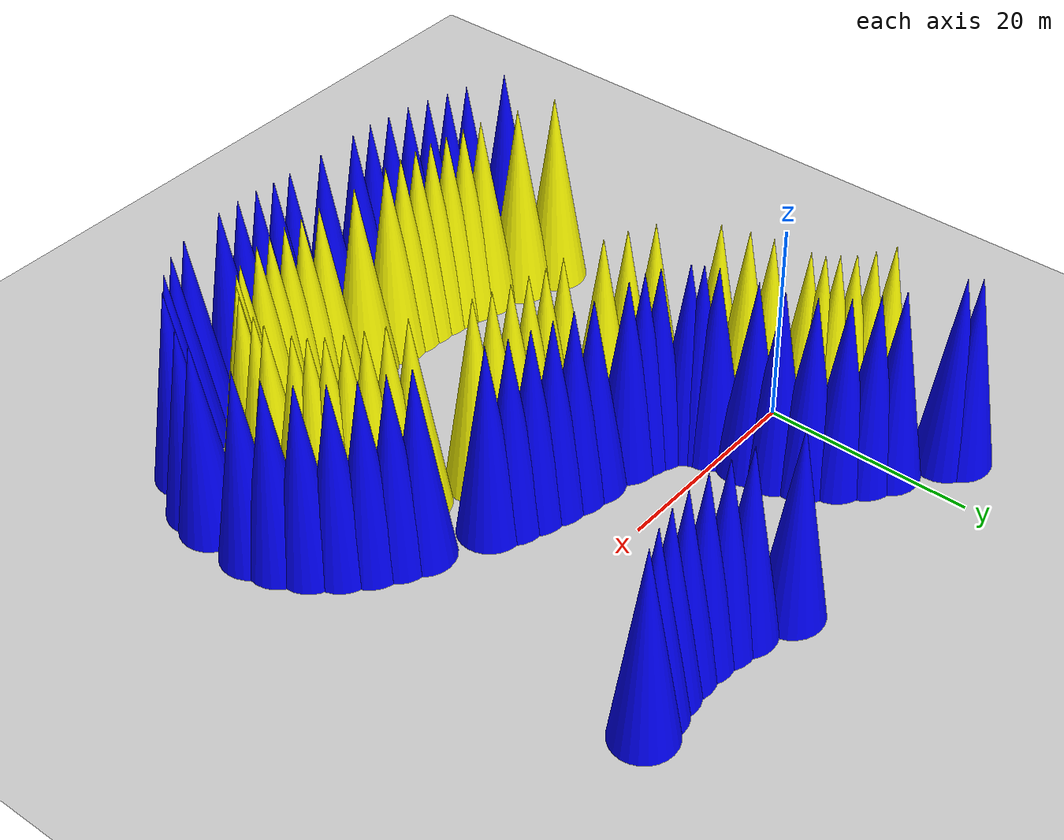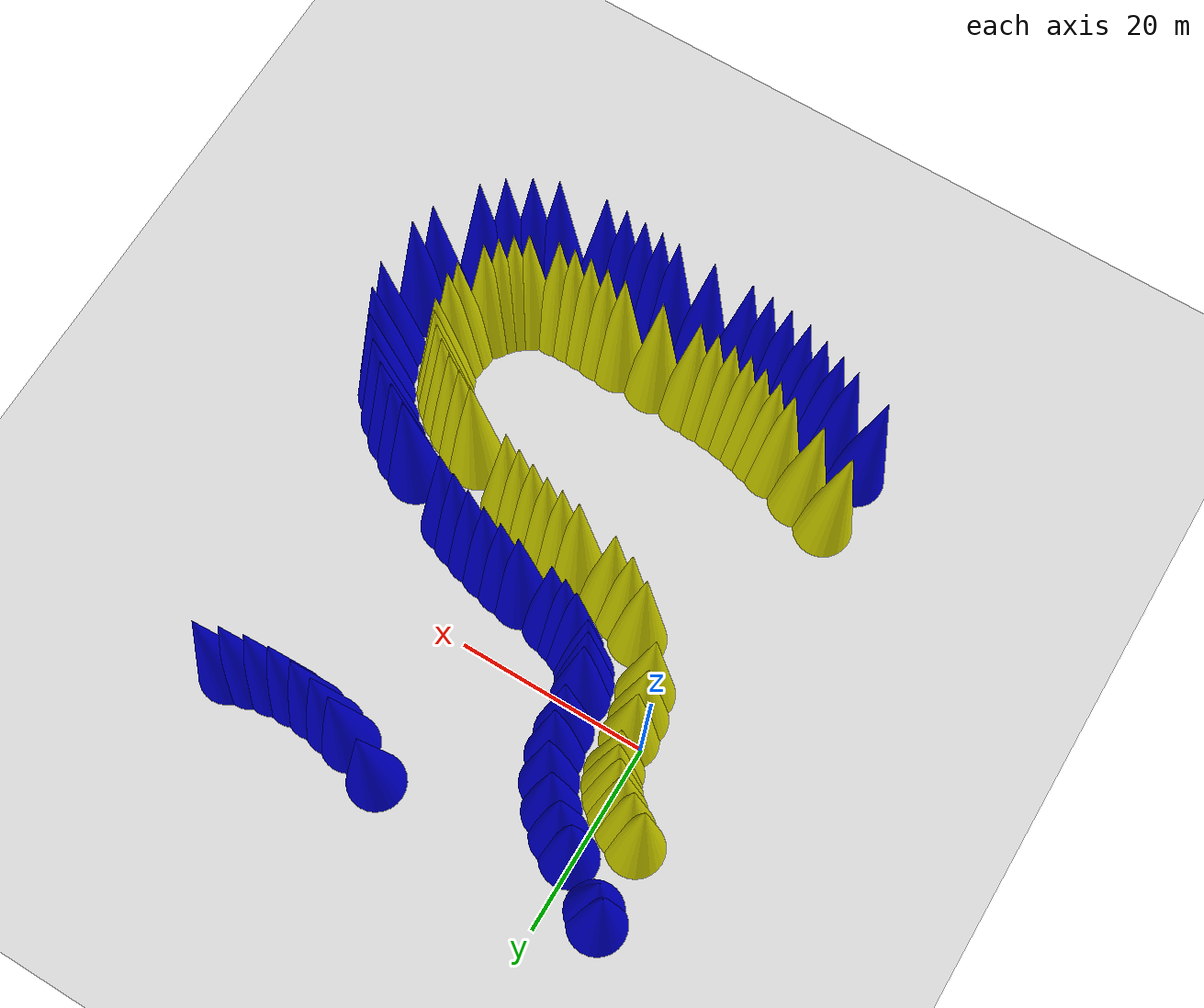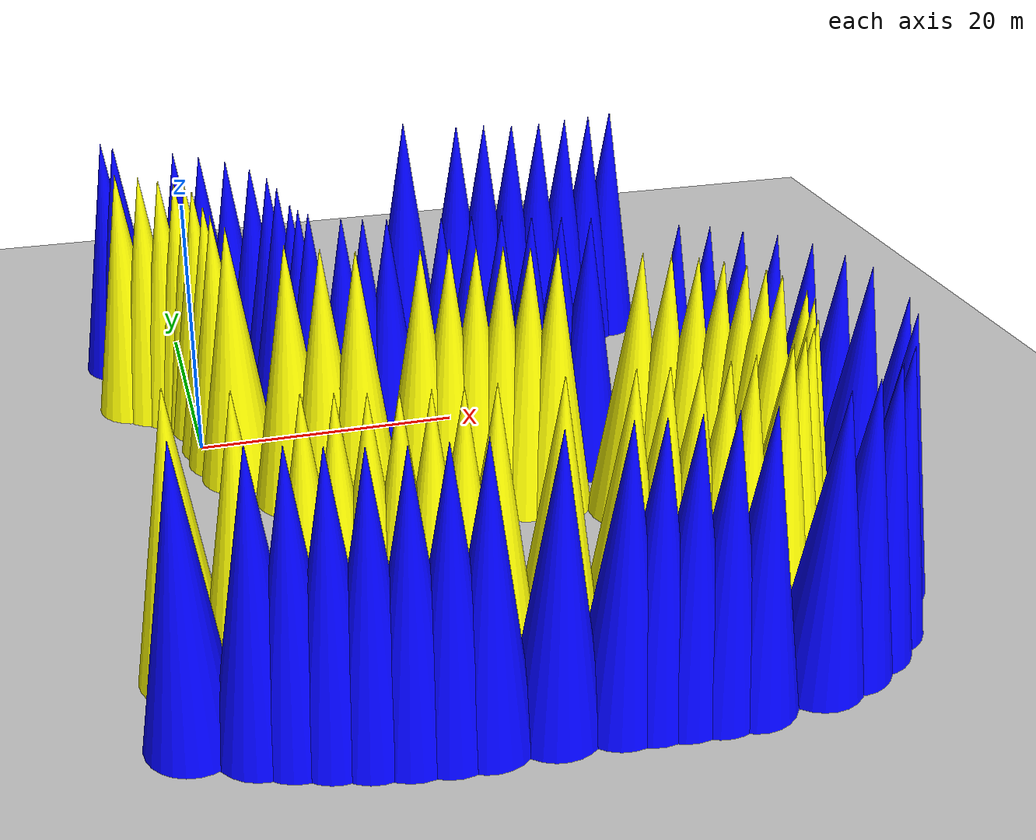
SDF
<sdf version="1.9">
 <world name="track">
  <model name="ground_plane">
   <static>true</static>
   <link name="link">
    <collision name="collision">
     <geometry><plane><normal>0 0 1</normal><size>100 100</size></plane></geometry>
    </collision>
    <visual name="visual">
     <geometry><plane><normal>0 0 1</normal><size>100 100</size></plane></geometry>
     <material>
      <ambient>0.8 0.8 0.8 1</ambient>
      <diffuse>0.8 0.8 0.8 1</diffuse>
      <specular>0.8 0.8 0.8 1</specular>
     </material>
    </visual>
    <inertial>
     <mass>1</mass>
     <inertia><ixx>1</ixx><ixy>0</ixy><ixz>0</ixz><iyy>1</iyy><iyz>0</iyz><izz>1</izz></inertia>
    </inertial>
   </link>
  </model>
  <model name="cones">
   <link name="cone_51_link">
    <collision name="cone_51_collision">
     <geometry><mesh><uri>model://cone/meshes/cone.stl</uri></mesh></geometry>
    </collision>
    <visual name="cone_51_visual">
     <geometry><mesh><uri>model://cone/meshes/cone.stl</uri></mesh></geometry>
     <material><ambient>1 1 0 1</ambient><diffuse>1 1 0 1</diffuse><specular>1 1 0 1</specular></material>
    </visual>
    <pose>-4.31864858110937 8.32717777382664 0.0 0 0 0</pose>
   </link>
   <link name="cone_52_link">
    <collision name="cone_52_collision">
     <geometry><mesh><uri>model://cone/meshes/cone.stl</uri></mesh></geometry>
    </collision>
    <visual name="cone_52_visual">
     <geometry><mesh><uri>model://cone/meshes/cone.stl</uri></mesh></geometry>
     <material><ambient>1 1 0 1</ambient><diffuse>1 1 0 1</diffuse><specular>1 1 0 1</specular></material>
    </visual>
    <pose>-2.64821833398598 7.33684919790624 0.0 0 0 0</pose>
   </link>
   <link name="cone_53_link">
    <collision name="cone_53_collision">
     <geometry><mesh><uri>model://cone/meshes/cone.stl</uri></mesh></geometry>
    </collision>
    <visual name="cone_53_visual">
     <geometry><mesh><uri>model://cone/meshes/cone.stl</uri></mesh></geometry>
     <material><ambient>1 1 0 1</ambient><diffuse>1 1 0 1</diffuse><specular>1 1 0 1</specular></material>
    </visual>
    <pose>-1.23396167898668 6.38669110355496 0.0 0 0 0</pose>
   </link>
   <link name="cone_54_link">
    <collision name="cone_54_collision">
     <geometry><mesh><uri>model://cone/meshes/cone.stl</uri></mesh></geometry>
    </collision>
    <visual name="cone_54_visual">
     <geometry><mesh><uri>model://cone/meshes/cone.stl</uri></mesh></geometry>
     <material><ambient>1 1 0 1</ambient><diffuse>1 1 0 1</diffuse><specular>1 1 0 1</specular></material>
    </visual>
    <pose>-0.139159724307982 5.41310565569044 0.0 0 0 0</pose>
   </link>
   <link name="cone_55_link">
    <collision name="cone_55_collision">
     <geometry><mesh><uri>model://cone/meshes/cone.stl</uri></mesh></geometry>
    </collision>
    <visual name="cone_55_visual">
     <geometry><mesh><uri>model://cone/meshes/cone.stl</uri></mesh></geometry>
     <material><ambient>1 1 0 1</ambient><diffuse>1 1 0 1</diffuse><specular>1 1 0 1</specular></material>
    </visual>
    <pose>0.583196113153409 4.42232005043196 0.0 0 0 0</pose>
   </link>
   <link name="cone_56_link">
    <collision name="cone_56_collision">
     <geometry><mesh><uri>model://cone/meshes/cone.stl</uri></mesh></geometry>
    </collision>
    <visual name="cone_56_visual">
     <geometry><mesh><uri>model://cone/meshes/cone.stl</uri></mesh></geometry>
     <material><ambient>1 1 0 1</ambient><diffuse>1 1 0 1</diffuse><specular>1 1 0 1</specular></material>
    </visual>
    <pose>1.00846697640521 3.25999992647677 0.0 0 0 0</pose>
   </link>
   <link name="cone_57_link">
    <collision name="cone_57_collision">
     <geometry><mesh><uri>model://cone/meshes/cone.stl</uri></mesh></geometry>
    </collision>
    <visual name="cone_57_visual">
     <geometry><mesh><uri>model://cone/meshes/cone.stl</uri></mesh></geometry>
     <material><ambient>1 1 0 1</ambient><diffuse>1 1 0 1</diffuse><specular>1 1 0 1</specular></material>
    </visual>
    <pose>1.42452204766312 -0.235409796458984 0.0 0 0 0</pose>
   </link>
   <link name="cone_58_link">
    <collision name="cone_58_collision">
     <geometry><mesh><uri>model://cone/meshes/cone.stl</uri></mesh></geometry>
    </collision>
    <visual name="cone_58_visual">
     <geometry><mesh><uri>model://cone/meshes/cone.stl</uri></mesh></geometry>
     <material><ambient>1 1 0 1</ambient><diffuse>1 1 0 1</diffuse><specular>1 1 0 1</specular></material>
    </visual>
    <pose>1.7076976610908 -2.501572642794 0.0 0 0 0</pose>
   </link>
   <link name="cone_59_link">
    <collision name="cone_59_collision">
     <geometry><mesh><uri>model://cone/meshes/cone.stl</uri></mesh></geometry>
    </collision>
    <visual name="cone_59_visual">
     <geometry><mesh><uri>model://cone/meshes/cone.stl</uri></mesh></geometry>
     <material><ambient>1 1 0 1</ambient><diffuse>1 1 0 1</diffuse><specular>1 1 0 1</specular></material>
    </visual>
    <pose>2.43395748729283 -5.02746251429141 0.0 0 0 0</pose>
   </link>
   <link name="cone_60_link">
    <collision name="cone_60_collision">
     <geometry><mesh><uri>model://cone/meshes/cone.stl</uri></mesh></geometry>
    </collision>
    <visual name="cone_60_visual">
     <geometry><mesh><uri>model://cone/meshes/cone.stl</uri></mesh></geometry>
     <material><ambient>1 1 0 1</ambient><diffuse>1 1 0 1</diffuse><specular>1 1 0 1</specular></material>
    </visual>
    <pose>5.90118769712182 -9.36241405660719 0.0 0 0 0</pose>
   </link>
   <link name="cone_61_link">
    <collision name="cone_61_collision">
     <geometry><mesh><uri>model://cone/meshes/cone.stl</uri></mesh></geometry>
    </collision>
    <visual name="cone_61_visual">
     <geometry><mesh><uri>model://cone/meshes/cone.stl</uri></mesh></geometry>
     <material><ambient>1 1 0 1</ambient><diffuse>1 1 0 1</diffuse><specular>1 1 0 1</specular></material>
    </visual>
    <pose>8.13219227914984 -10.6723062142501 0.0 0 0 0</pose>
   </link>
   <link name="cone_62_link">
    <collision name="cone_62_collision">
     <geometry><mesh><uri>model://cone/meshes/cone.stl</uri></mesh></geometry>
    </collision>
    <visual name="cone_62_visual">
     <geometry><mesh><uri>model://cone/meshes/cone.stl</uri></mesh></geometry>
     <material><ambient>1 1 0 1</ambient><diffuse>1 1 0 1</diffuse><specular>1 1 0 1</specular></material>
    </visual>
    <pose>10.4108490166236 -11.5249176387577 0.0 0 0 0</pose>
   </link>
   <link name="cone_63_link">
    <collision name="cone_63_collision">
     <geometry><mesh><uri>model://cone/meshes/cone.stl</uri></mesh></geometry>
    </collision>
    <visual name="cone_63_visual">
     <geometry><mesh><uri>model://cone/meshes/cone.stl</uri></mesh></geometry>
     <material><ambient>1 1 0 1</ambient><diffuse>1 1 0 1</diffuse><specular>1 1 0 1</specular></material>
    </visual>
    <pose>14.7174578544944 -12.4162331505645 0.0 0 0 0</pose>
   </link>
   <link name="cone_64_link">
    <collision name="cone_64_collision">
     <geometry><mesh><uri>model://cone/meshes/cone.stl</uri></mesh></geometry>
    </collision>
    <visual name="cone_64_visual">
     <geometry><mesh><uri>model://cone/meshes/cone.stl</uri></mesh></geometry>
     <material><ambient>1 1 0 1</ambient><diffuse>1 1 0 1</diffuse><specular>1 1 0 1</specular></material>
    </visual>
    <pose>16.6611999625517 -12.7135418322201 0.0 0 0 0</pose>
   </link>
   <link name="cone_65_link">
    <collision name="cone_65_collision">
     <geometry><mesh><uri>model://cone/meshes/cone.stl</uri></mesh></geometry>
    </collision>
    <visual name="cone_65_visual">
     <geometry><mesh><uri>model://cone/meshes/cone.stl</uri></mesh></geometry>
     <material><ambient>1 1 0 1</ambient><diffuse>1 1 0 1</diffuse><specular>1 1 0 1</specular></material>
    </visual>
    <pose>18.4669199253036 -13.0527675263258 0.0 0 0 0</pose>
   </link>
   <link name="cone_66_link">
    <collision name="cone_66_collision">
     <geometry><mesh><uri>model://cone/meshes/cone.stl</uri></mesh></geometry>
    </collision>
    <visual name="cone_66_visual">
     <geometry><mesh><uri>model://cone/meshes/cone.stl</uri></mesh></geometry>
     <material><ambient>1 1 0 1</ambient><diffuse>1 1 0 1</diffuse><specular>1 1 0 1</specular></material>
    </visual>
    <pose>20.2513584750154 -13.4902268953088 0.0 0 0 0</pose>
   </link>
   <link name="cone_67_link">
    <collision name="cone_67_collision">
     <geometry><mesh><uri>model://cone/meshes/cone.stl</uri></mesh></geometry>
    </collision>
    <visual name="cone_67_visual">
     <geometry><mesh><uri>model://cone/meshes/cone.stl</uri></mesh></geometry>
     <material><ambient>1 1 0 1</ambient><diffuse>1 1 0 1</diffuse><specular>1 1 0 1</specular></material>
    </visual>
    <pose>22.0275043214267 -14.0208096878619 0.0 0 0 0</pose>
   </link>
   <link name="cone_68_link">
    <collision name="cone_68_collision">
     <geometry><mesh><uri>model://cone/meshes/cone.stl</uri></mesh></geometry>
    </collision>
    <visual name="cone_68_visual">
     <geometry><mesh><uri>model://cone/meshes/cone.stl</uri></mesh></geometry>
     <material><ambient>1 1 0 1</ambient><diffuse>1 1 0 1</diffuse><specular>1 1 0 1</specular></material>
    </visual>
    <pose>23.7938485314227 -14.6351269687361 0.0 0 0 0</pose>
   </link>
   <link name="cone_69_link">
    <collision name="cone_69_collision">
     <geometry><mesh><uri>model://cone/meshes/cone.stl</uri></mesh></geometry>
    </collision>
    <visual name="cone_69_visual">
     <geometry><mesh><uri>model://cone/meshes/cone.stl</uri></mesh></geometry>
     <material><ambient>1 1 0 1</ambient><diffuse>1 1 0 1</diffuse><specular>1 1 0 1</specular></material>
    </visual>
    <pose>29.038055353384 -16.8864873288738 0.0 0 0 0</pose>
   </link>
   <link name="cone_70_link">
    <collision name="cone_70_collision">
     <geometry><mesh><uri>model://cone/meshes/cone.stl</uri></mesh></geometry>
    </collision>
    <visual name="cone_70_visual">
     <geometry><mesh><uri>model://cone/meshes/cone.stl</uri></mesh></geometry>
     <material><ambient>1 1 0 1</ambient><diffuse>1 1 0 1</diffuse><specular>1 1 0 1</specular></material>
    </visual>
    <pose>30.7681622622371 -17.739262619614 0.0 0 0 0</pose>
   </link>
   <link name="cone_71_link">
    <collision name="cone_71_collision">
     <geometry><mesh><uri>model://cone/meshes/cone.stl</uri></mesh></geometry>
    </collision>
    <visual name="cone_71_visual">
     <geometry><mesh><uri>model://cone/meshes/cone.stl</uri></mesh></geometry>
     <material><ambient>1 1 0 1</ambient><diffuse>1 1 0 1</diffuse><specular>1 1 0 1</specular></material>
    </visual>
    <pose>32.3760783979903 -18.6039808584518 0.0 0 0 0</pose>
   </link>
   <link name="cone_72_link">
    <collision name="cone_72_collision">
     <geometry><mesh><uri>model://cone/meshes/cone.stl</uri></mesh></geometry>
    </collision>
    <visual name="cone_72_visual">
     <geometry><mesh><uri>model://cone/meshes/cone.stl</uri></mesh></geometry>
     <material><ambient>1 1 0 1</ambient><diffuse>1 1 0 1</diffuse><specular>1 1 0 1</specular></material>
    </visual>
    <pose>33.7897740653103 -19.5166383512928 0.0 0 0 0</pose>
   </link>
   <link name="cone_73_link">
    <collision name="cone_73_collision">
     <geometry><mesh><uri>model://cone/meshes/cone.stl</uri></mesh></geometry>
    </collision>
    <visual name="cone_73_visual">
     <geometry><mesh><uri>model://cone/meshes/cone.stl</uri></mesh></geometry>
     <material><ambient>1 1 0 1</ambient><diffuse>1 1 0 1</diffuse><specular>1 1 0 1</specular></material>
    </visual>
    <pose>34.9667330396653 -20.5090458088496 0.0 0 0 0</pose>
   </link>
   <link name="cone_74_link">
    <collision name="cone_74_collision">
     <geometry><mesh><uri>model://cone/meshes/cone.stl</uri></mesh></geometry>
    </collision>
    <visual name="cone_74_visual">
     <geometry><mesh><uri>model://cone/meshes/cone.stl</uri></mesh></geometry>
     <material><ambient>1 1 0 1</ambient><diffuse>1 1 0 1</diffuse><specular>1 1 0 1</specular></material>
    </visual>
    <pose>35.8614855279756 -21.5808775016001 0.0 0 0 0</pose>
   </link>
   <link name="cone_75_link">
    <collision name="cone_75_collision">
     <geometry><mesh><uri>model://cone/meshes/cone.stl</uri></mesh></geometry>
    </collision>
    <visual name="cone_75_visual">
     <geometry><mesh><uri>model://cone/meshes/cone.stl</uri></mesh></geometry>
     <material><ambient>1 1 0 1</ambient><diffuse>1 1 0 1</diffuse><specular>1 1 0 1</specular></material>
    </visual>
    <pose>36.4612858521334 -22.745130864389 0.0 0 0 0</pose>
   </link>
   <link name="cone_76_link">
    <collision name="cone_76_collision">
     <geometry><mesh><uri>model://cone/meshes/cone.stl</uri></mesh></geometry>
    </collision>
    <visual name="cone_76_visual">
     <geometry><mesh><uri>model://cone/meshes/cone.stl</uri></mesh></geometry>
     <material><ambient>1 1 0 1</ambient><diffuse>1 1 0 1</diffuse><specular>1 1 0 1</specular></material>
    </visual>
    <pose>36.8711477182864 -25.4557910211687 0.0 0 0 0</pose>
   </link>
   <link name="cone_77_link">
    <collision name="cone_77_collision">
     <geometry><mesh><uri>model://cone/meshes/cone.stl</uri></mesh></geometry>
    </collision>
    <visual name="cone_77_visual">
     <geometry><mesh><uri>model://cone/meshes/cone.stl</uri></mesh></geometry>
     <material><ambient>1 1 0 1</ambient><diffuse>1 1 0 1</diffuse><specular>1 1 0 1</specular></material>
    </visual>
    <pose>36.6696611457761 -26.8930663715963 0.0 0 0 0</pose>
   </link>
   <link name="cone_78_link">
    <collision name="cone_78_collision">
     <geometry><mesh><uri>model://cone/meshes/cone.stl</uri></mesh></geometry>
    </collision>
    <visual name="cone_78_visual">
     <geometry><mesh><uri>model://cone/meshes/cone.stl</uri></mesh></geometry>
     <material><ambient>1 1 0 1</ambient><diffuse>1 1 0 1</diffuse><specular>1 1 0 1</specular></material>
    </visual>
    <pose>35.5175477601575 -29.6867414698392 0.0 0 0 0</pose>
   </link>
   <link name="cone_79_link">
    <collision name="cone_79_collision">
     <geometry><mesh><uri>model://cone/meshes/cone.stl</uri></mesh></geometry>
    </collision>
    <visual name="cone_79_visual">
     <geometry><mesh><uri>model://cone/meshes/cone.stl</uri></mesh></geometry>
     <material><ambient>1 1 0 1</ambient><diffuse>1 1 0 1</diffuse><specular>1 1 0 1</specular></material>
    </visual>
    <pose>34.6369025552692 -30.9011171932826 0.0 0 0 0</pose>
   </link>
   <link name="cone_80_link">
    <collision name="cone_80_collision">
     <geometry><mesh><uri>model://cone/meshes/cone.stl</uri></mesh></geometry>
    </collision>
    <visual name="cone_80_visual">
     <geometry><mesh><uri>model://cone/meshes/cone.stl</uri></mesh></geometry>
     <material><ambient>1 1 0 1</ambient><diffuse>1 1 0 1</diffuse><specular>1 1 0 1</specular></material>
    </visual>
    <pose>33.5888282300982 -31.9233335254203 0.0 0 0 0</pose>
   </link>
   <link name="cone_81_link">
    <collision name="cone_81_collision">
     <geometry><mesh><uri>model://cone/meshes/cone.stl</uri></mesh></geometry>
    </collision>
    <visual name="cone_81_visual">
     <geometry><mesh><uri>model://cone/meshes/cone.stl</uri></mesh></geometry>
     <material><ambient>1 1 0 1</ambient><diffuse>1 1 0 1</diffuse><specular>1 1 0 1</specular></material>
    </visual>
    <pose>32.4026659456202 -32.7184009884738 0.0 0 0 0</pose>
   </link>
   <link name="cone_82_link">
    <collision name="cone_82_collision">
     <geometry><mesh><uri>model://cone/meshes/cone.stl</uri></mesh></geometry>
    </collision>
    <visual name="cone_82_visual">
     <geometry><mesh><uri>model://cone/meshes/cone.stl</uri></mesh></geometry>
     <material><ambient>1 1 0 1</ambient><diffuse>1 1 0 1</diffuse><specular>1 1 0 1</specular></material>
    </visual>
    <pose>29.6211021726631 -33.5886007841515 0.0 0 0 0</pose>
   </link>
   <link name="cone_83_link">
    <collision name="cone_83_collision">
     <geometry><mesh><uri>model://cone/meshes/cone.stl</uri></mesh></geometry>
    </collision>
    <visual name="cone_83_visual">
     <geometry><mesh><uri>model://cone/meshes/cone.stl</uri></mesh></geometry>
     <material><ambient>1 1 0 1</ambient><diffuse>1 1 0 1</diffuse><specular>1 1 0 1</specular></material>
    </visual>
    <pose>27.9849204584717 -33.717019313626 0.0 0 0 0</pose>
   </link>
   <link name="cone_84_link">
    <collision name="cone_84_collision">
     <geometry><mesh><uri>model://cone/meshes/cone.stl</uri></mesh></geometry>
    </collision>
    <visual name="cone_84_visual">
     <geometry><mesh><uri>model://cone/meshes/cone.stl</uri></mesh></geometry>
     <material><ambient>1 1 0 1</ambient><diffuse>1 1 0 1</diffuse><specular>1 1 0 1</specular></material>
    </visual>
    <pose>26.2183096377485 -33.68480226464 0.0 0 0 0</pose>
   </link>
   <link name="cone_85_link">
    <collision name="cone_85_collision">
     <geometry><mesh><uri>model://cone/meshes/cone.stl</uri></mesh></geometry>
    </collision>
    <visual name="cone_85_visual">
     <geometry><mesh><uri>model://cone/meshes/cone.stl</uri></mesh></geometry>
     <material><ambient>1 1 0 1</ambient><diffuse>1 1 0 1</diffuse><specular>1 1 0 1</specular></material>
    </visual>
    <pose>24.3309596262912 -33.5465676173721 0.0 0 0 0</pose>
   </link>
   <link name="cone_86_link">
    <collision name="cone_86_collision">
     <geometry><mesh><uri>model://cone/meshes/cone.stl</uri></mesh></geometry>
    </collision>
    <visual name="cone_86_visual">
     <geometry><mesh><uri>model://cone/meshes/cone.stl</uri></mesh></geometry>
     <material><ambient>1 1 0 1</ambient><diffuse>1 1 0 1</diffuse><specular>1 1 0 1</specular></material>
    </visual>
    <pose>22.3208062313579 -33.3726612899257 0.0 0 0 0</pose>
   </link>
   <link name="cone_87_link">
    <collision name="cone_87_collision">
     <geometry><mesh><uri>model://cone/meshes/cone.stl</uri></mesh></geometry>
    </collision>
    <visual name="cone_87_visual">
     <geometry><mesh><uri>model://cone/meshes/cone.stl</uri></mesh></geometry>
     <material><ambient>1 1 0 1</ambient><diffuse>1 1 0 1</diffuse><specular>1 1 0 1</specular></material>
    </visual>
    <pose>18.1328018280879 -33.1964401661521 0.0 0 0 0</pose>
   </link>
   <link name="cone_88_link">
    <collision name="cone_88_collision">
     <geometry><mesh><uri>model://cone/meshes/cone.stl</uri></mesh></geometry>
    </collision>
    <visual name="cone_88_visual">
     <geometry><mesh><uri>model://cone/meshes/cone.stl</uri></mesh></geometry>
     <material><ambient>1 1 0 1</ambient><diffuse>1 1 0 1</diffuse><specular>1 1 0 1</specular></material>
    </visual>
    <pose>14.1429922166079 -33.1731958647648 0.0 0 0 0</pose>
   </link>
   <link name="cone_89_link">
    <collision name="cone_89_collision">
     <geometry><mesh><uri>model://cone/meshes/cone.stl</uri></mesh></geometry>
    </collision>
    <visual name="cone_89_visual">
     <geometry><mesh><uri>model://cone/meshes/cone.stl</uri></mesh></geometry>
     <material><ambient>1 1 0 1</ambient><diffuse>1 1 0 1</diffuse><specular>1 1 0 1</specular></material>
    </visual>
    <pose>12.2313503871593 -33.1266878316603 0.0 0 0 0</pose>
   </link>
   <link name="cone_90_link">
    <collision name="cone_90_collision">
     <geometry><mesh><uri>model://cone/meshes/cone.stl</uri></mesh></geometry>
    </collision>
    <visual name="cone_90_visual">
     <geometry><mesh><uri>model://cone/meshes/cone.stl</uri></mesh></geometry>
     <material><ambient>1 1 0 1</ambient><diffuse>1 1 0 1</diffuse><specular>1 1 0 1</specular></material>
    </visual>
    <pose>10.3778348140314 -33.0132052855498 0.0 0 0 0</pose>
   </link>
   <link name="cone_91_link">
    <collision name="cone_91_collision">
     <geometry><mesh><uri>model://cone/meshes/cone.stl</uri></mesh></geometry>
    </collision>
    <visual name="cone_91_visual">
     <geometry><mesh><uri>model://cone/meshes/cone.stl</uri></mesh></geometry>
     <material><ambient>1 1 0 1</ambient><diffuse>1 1 0 1</diffuse><specular>1 1 0 1</specular></material>
    </visual>
    <pose>8.58829435522285 -32.8040580663346 0.0 0 0 0</pose>
   </link>
   <link name="cone_92_link">
    <collision name="cone_92_collision">
     <geometry><mesh><uri>model://cone/meshes/cone.stl</uri></mesh></geometry>
    </collision>
    <visual name="cone_92_visual">
     <geometry><mesh><uri>model://cone/meshes/cone.stl</uri></mesh></geometry>
     <material><ambient>1 1 0 1</ambient><diffuse>1 1 0 1</diffuse><specular>1 1 0 1</specular></material>
    </visual>
    <pose>6.84064584789227 -32.4725374962639 0.0 0 0 0</pose>
   </link>
   <link name="cone_93_link">
    <collision name="cone_93_collision">
     <geometry><mesh><uri>model://cone/meshes/cone.stl</uri></mesh></geometry>
    </collision>
    <visual name="cone_93_visual">
     <geometry><mesh><uri>model://cone/meshes/cone.stl</uri></mesh></geometry>
     <material><ambient>1 1 0 1</ambient><diffuse>1 1 0 1</diffuse><specular>1 1 0 1</specular></material>
    </visual>
    <pose>5.0700994448255 -32.0172508962124 0.0 0 0 0</pose>
   </link>
   <link name="cone_94_link">
    <collision name="cone_94_collision">
     <geometry><mesh><uri>model://cone/meshes/cone.stl</uri></mesh></geometry>
    </collision>
    <visual name="cone_94_visual">
     <geometry><mesh><uri>model://cone/meshes/cone.stl</uri></mesh></geometry>
     <material><ambient>1 1 0 1</ambient><diffuse>1 1 0 1</diffuse><specular>1 1 0 1</specular></material>
    </visual>
    <pose>3.27322533222869 -31.4640545504384 0.0 0 0 0</pose>
   </link>
   <link name="cone_95_link">
    <collision name="cone_95_collision">
     <geometry><mesh><uri>model://cone/meshes/cone.stl</uri></mesh></geometry>
    </collision>
    <visual name="cone_95_visual">
     <geometry><mesh><uri>model://cone/meshes/cone.stl</uri></mesh></geometry>
     <material><ambient>1 1 0 1</ambient><diffuse>1 1 0 1</diffuse><specular>1 1 0 1</specular></material>
    </visual>
    <pose>-0.418687595522242 -30.179669644723 0.0 0 0 0</pose>
   </link>
   <link name="cone_96_link">
    <collision name="cone_96_collision">
     <geometry><mesh><uri>model://cone/meshes/cone.stl</uri></mesh></geometry>
    </collision>
    <visual name="cone_96_visual">
     <geometry><mesh><uri>model://cone/meshes/cone.stl</uri></mesh></geometry>
     <material><ambient>1 1 0 1</ambient><diffuse>1 1 0 1</diffuse><specular>1 1 0 1</specular></material>
    </visual>
    <pose>-4.09627739578414 -28.8238238024923 0.0 0 0 0</pose>
   </link>
   <link name="cone_25_link">
    <collision name="cone_25_collision">
     <geometry><mesh><uri>model://cone/meshes/cone.stl</uri></mesh></geometry>
    </collision>
    <visual name="cone_25_visual">
     <geometry><mesh><uri>model://cone/meshes/cone.stl</uri></mesh></geometry>
     <material><ambient>0 0 1 1</ambient><diffuse>0 0 1 1</diffuse><specular>0 0 1 1</specular></material>
    </visual>
    <pose>38.0024261140352 14.4777602906678 0.0 0 0 0</pose>
   </link>
   <link name="cone_26_link">
    <collision name="cone_26_collision">
     <geometry><mesh><uri>model://cone/meshes/cone.stl</uri></mesh></geometry>
    </collision>
    <visual name="cone_26_visual">
     <geometry><mesh><uri>model://cone/meshes/cone.stl</uri></mesh></geometry>
     <material><ambient>0 0 1 1</ambient><diffuse>0 0 1 1</diffuse><specular>0 0 1 1</specular></material>
    </visual>
    <pose>35.7974585974047 13.6826661179064 0.0 0 0 0</pose>
   </link>
   <link name="cone_27_link">
    <collision name="cone_27_collision">
     <geometry><mesh><uri>model://cone/meshes/cone.stl</uri></mesh></geometry>
    </collision>
    <visual name="cone_27_visual">
     <geometry><mesh><uri>model://cone/meshes/cone.stl</uri></mesh></geometry>
     <material><ambient>0 0 1 1</ambient><diffuse>0 0 1 1</diffuse><specular>0 0 1 1</specular></material>
    </visual>
    <pose>33.4965697064231 13.1523520909686 0.0 0 0 0</pose>
   </link>
   <link name="cone_28_link">
    <collision name="cone_28_collision">
     <geometry><mesh><uri>model://cone/meshes/cone.stl</uri></mesh></geometry>
    </collision>
    <visual name="cone_28_visual">
     <geometry><mesh><uri>model://cone/meshes/cone.stl</uri></mesh></geometry>
     <material><ambient>0 0 1 1</ambient><diffuse>0 0 1 1</diffuse><specular>0 0 1 1</specular></material>
    </visual>
    <pose>31.1302557069132 12.9121393769316 0.0 0 0 0</pose>
   </link>
   <link name="cone_29_link">
    <collision name="cone_29_collision">
     <geometry><mesh><uri>model://cone/meshes/cone.stl</uri></mesh></geometry>
    </collision>
    <visual name="cone_29_visual">
     <geometry><mesh><uri>model://cone/meshes/cone.stl</uri></mesh></geometry>
     <material><ambient>0 0 1 1</ambient><diffuse>0 0 1 1</diffuse><specular>0 0 1 1</specular></material>
    </visual>
    <pose>28.7495405480103 12.9803375419597 0.0 0 0 0</pose>
   </link>
   <link name="cone_30_link">
    <collision name="cone_30_collision">
     <geometry><mesh><uri>model://cone/meshes/cone.stl</uri></mesh></geometry>
    </collision>
    <visual name="cone_30_visual">
     <geometry><mesh><uri>model://cone/meshes/cone.stl</uri></mesh></geometry>
     <material><ambient>0 0 1 1</ambient><diffuse>0 0 1 1</diffuse><specular>0 0 1 1</specular></material>
    </visual>
    <pose>26.4275819814214 13.3378047377686 0.0 0 0 0</pose>
   </link>
   <link name="cone_31_link">
    <collision name="cone_31_collision">
     <geometry><mesh><uri>model://cone/meshes/cone.stl</uri></mesh></geometry>
    </collision>
    <visual name="cone_31_visual">
     <geometry><mesh><uri>model://cone/meshes/cone.stl</uri></mesh></geometry>
     <material><ambient>0 0 1 1</ambient><diffuse>0 0 1 1</diffuse><specular>0 0 1 1</specular></material>
    </visual>
    <pose>24.1935407090117 13.9452300781406 0.0 0 0 0</pose>
   </link>
   <link name="cone_32_link">
    <collision name="cone_32_collision">
     <geometry><mesh><uri>model://cone/meshes/cone.stl</uri></mesh></geometry>
    </collision>
    <visual name="cone_32_visual">
     <geometry><mesh><uri>model://cone/meshes/cone.stl</uri></mesh></geometry>
     <material><ambient>0 0 1 1</ambient><diffuse>0 0 1 1</diffuse><specular>0 0 1 1</specular></material>
    </visual>
    <pose>20.0475993937396 15.7534500265274 0.0 0 0 0</pose>
   </link>
   <link name="cone_49_link">
    <collision name="cone_49_collision">
     <geometry><mesh><uri>model://cone/meshes/cone.stl</uri></mesh></geometry>
    </collision>
    <visual name="cone_49_visual">
     <geometry><mesh><uri>model://cone/meshes/cone.stl</uri></mesh></geometry>
     <material><ambient>0 0 1 1</ambient><diffuse>0 0 1 1</diffuse><specular>0 0 1 1</specular></material>
    </visual>
    <pose>-4.95012865665813 16.4016948398736 0.0 0 0 0</pose>
   </link>
   <link name="cone_50_link">
    <collision name="cone_50_collision">
     <geometry><mesh><uri>model://cone/meshes/cone.stl</uri></mesh></geometry>
    </collision>
    <visual name="cone_50_visual">
     <geometry><mesh><uri>model://cone/meshes/cone.stl</uri></mesh></geometry>
     <material><ambient>0 0 1 1</ambient><diffuse>0 0 1 1</diffuse><specular>0 0 1 1</specular></material>
    </visual>
    <pose>-4.05317915721677 15.4107620877673 0.0 0 0 0</pose>
   </link>
   <link name="cone_51_link">
    <collision name="cone_51_collision">
     <geometry><mesh><uri>model://cone/meshes/cone.stl</uri></mesh></geometry>
    </collision>
    <visual name="cone_51_visual">
     <geometry><mesh><uri>model://cone/meshes/cone.stl</uri></mesh></geometry>
     <material><ambient>0 0 1 1</ambient><diffuse>0 0 1 1</diffuse><specular>0 0 1 1</specular></material>
    </visual>
    <pose>0.49212153312725 12.4494087837712 0.0 0 0 0</pose>
   </link>
   <link name="cone_52_link">
    <collision name="cone_52_collision">
     <geometry><mesh><uri>model://cone/meshes/cone.stl</uri></mesh></geometry>
    </collision>
    <visual name="cone_52_visual">
     <geometry><mesh><uri>model://cone/meshes/cone.stl</uri></mesh></geometry>
     <material><ambient>0 0 1 1</ambient><diffuse>0 0 1 1</diffuse><specular>0 0 1 1</specular></material>
    </visual>
    <pose>2.38653784056378 11.1712478467585 0.0 0 0 0</pose>
   </link>
   <link name="cone_53_link">
    <collision name="cone_53_collision">
     <geometry><mesh><uri>model://cone/meshes/cone.stl</uri></mesh></geometry>
    </collision>
    <visual name="cone_53_visual">
     <geometry><mesh><uri>model://cone/meshes/cone.stl</uri></mesh></geometry>
     <material><ambient>0 0 1 1</ambient><diffuse>0 0 1 1</diffuse><specular>0 0 1 1</specular></material>
    </visual>
    <pose>4.26363974073903 9.48929957533922 0.0 0 0 0</pose>
   </link>
   <link name="cone_54_link">
    <collision name="cone_54_collision">
     <geometry><mesh><uri>model://cone/meshes/cone.stl</uri></mesh></geometry>
    </collision>
    <visual name="cone_54_visual">
     <geometry><mesh><uri>model://cone/meshes/cone.stl</uri></mesh></geometry>
     <material><ambient>0 0 1 1</ambient><diffuse>0 0 1 1</diffuse><specular>0 0 1 1</specular></material>
    </visual>
    <pose>5.87263326747036 7.25460792254726 0.0 0 0 0</pose>
   </link>
   <link name="cone_55_link">
    <collision name="cone_55_collision">
     <geometry><mesh><uri>model://cone/meshes/cone.stl</uri></mesh></geometry>
    </collision>
    <visual name="cone_55_visual">
     <geometry><mesh><uri>model://cone/meshes/cone.stl</uri></mesh></geometry>
     <material><ambient>0 0 1 1</ambient><diffuse>0 0 1 1</diffuse><specular>0 0 1 1</specular></material>
    </visual>
    <pose>6.83628597561633 4.68706884998182 0.0 0 0 0</pose>
   </link>
   <link name="cone_56_link">
    <collision name="cone_56_collision">
     <geometry><mesh><uri>model://cone/meshes/cone.stl</uri></mesh></geometry>
    </collision>
    <visual name="cone_56_visual">
     <geometry><mesh><uri>model://cone/meshes/cone.stl</uri></mesh></geometry>
     <material><ambient>0 0 1 1</ambient><diffuse>0 0 1 1</diffuse><specular>0 0 1 1</specular></material>
    </visual>
    <pose>7.22868549746256 2.31823546262226 0.0 0 0 0</pose>
   </link>
   <link name="cone_57_link">
    <collision name="cone_57_collision">
     <geometry><mesh><uri>model://cone/meshes/cone.stl</uri></mesh></geometry>
    </collision>
    <visual name="cone_57_visual">
     <geometry><mesh><uri>model://cone/meshes/cone.stl</uri></mesh></geometry>
     <material><ambient>0 0 1 1</ambient><diffuse>0 0 1 1</diffuse><specular>0 0 1 1</specular></material>
    </visual>
    <pose>7.60968340642873 -1.42149659832866 0.0 0 0 0</pose>
   </link>
   <link name="cone_58_link">
    <collision name="cone_58_collision">
     <geometry><mesh><uri>model://cone/meshes/cone.stl</uri></mesh></geometry>
    </collision>
    <visual name="cone_58_visual">
     <geometry><mesh><uri>model://cone/meshes/cone.stl</uri></mesh></geometry>
     <material><ambient>0 0 1 1</ambient><diffuse>0 0 1 1</diffuse><specular>0 0 1 1</specular></material>
    </visual>
    <pose>7.9750905618407 -2.7261923758349 0.0 0 0 0</pose>
   </link>
   <link name="cone_59_link">
    <collision name="cone_59_collision">
     <geometry><mesh><uri>model://cone/meshes/cone.stl</uri></mesh></geometry>
    </collision>
    <visual name="cone_59_visual">
     <geometry><mesh><uri>model://cone/meshes/cone.stl</uri></mesh></geometry>
     <material><ambient>0 0 1 1</ambient><diffuse>0 0 1 1</diffuse><specular>0 0 1 1</specular></material>
    </visual>
    <pose>8.54802041473498 -3.68009075055991 0.0 0 0 0</pose>
   </link>
   <link name="cone_60_link">
    <collision name="cone_60_collision">
     <geometry><mesh><uri>model://cone/meshes/cone.stl</uri></mesh></geometry>
    </collision>
    <visual name="cone_60_visual">
     <geometry><mesh><uri>model://cone/meshes/cone.stl</uri></mesh></geometry>
     <material><ambient>0 0 1 1</ambient><diffuse>0 0 1 1</diffuse><specular>0 0 1 1</specular></material>
    </visual>
    <pose>10.6601317831479 -5.23084300440234 0.0 0 0 0</pose>
   </link>
   <link name="cone_61_link">
    <collision name="cone_61_collision">
     <geometry><mesh><uri>model://cone/meshes/cone.stl</uri></mesh></geometry>
    </collision>
    <visual name="cone_61_visual">
     <geometry><mesh><uri>model://cone/meshes/cone.stl</uri></mesh></geometry>
     <material><ambient>0 0 1 1</ambient><diffuse>0 0 1 1</diffuse><specular>0 0 1 1</specular></material>
    </visual>
    <pose>12.1167992046948 -5.77254995615783 0.0 0 0 0</pose>
   </link>
   <link name="cone_62_link">
    <collision name="cone_62_collision">
     <geometry><mesh><uri>model://cone/meshes/cone.stl</uri></mesh></geometry>
    </collision>
    <visual name="cone_62_visual">
     <geometry><mesh><uri>model://cone/meshes/cone.stl</uri></mesh></geometry>
     <material><ambient>0 0 1 1</ambient><diffuse>0 0 1 1</diffuse><specular>0 0 1 1</specular></material>
    </visual>
    <pose>13.7805173778787 -6.17261534649334 0.0 0 0 0</pose>
   </link>
   <link name="cone_63_link">
    <collision name="cone_63_collision">
     <geometry><mesh><uri>model://cone/meshes/cone.stl</uri></mesh></geometry>
    </collision>
    <visual name="cone_63_visual">
     <geometry><mesh><uri>model://cone/meshes/cone.stl</uri></mesh></geometry>
     <material><ambient>0 0 1 1</ambient><diffuse>0 0 1 1</diffuse><specular>0 0 1 1</specular></material>
    </visual>
    <pose>17.6231089179688 -6.79114948102549 0.0 0 0 0</pose>
   </link>
   <link name="cone_64_link">
    <collision name="cone_64_collision">
     <geometry><mesh><uri>model://cone/meshes/cone.stl</uri></mesh></geometry>
    </collision>
    <visual name="cone_64_visual">
     <geometry><mesh><uri>model://cone/meshes/cone.stl</uri></mesh></geometry>
     <material><ambient>0 0 1 1</ambient><diffuse>0 0 1 1</diffuse><specular>0 0 1 1</specular></material>
    </visual>
    <pose>19.7388585053217 -7.18913620702706 0.0 0 0 0</pose>
   </link>
   <link name="cone_65_link">
    <collision name="cone_65_collision">
     <geometry><mesh><uri>model://cone/meshes/cone.stl</uri></mesh></geometry>
    </collision>
    <visual name="cone_65_visual">
     <geometry><mesh><uri>model://cone/meshes/cone.stl</uri></mesh></geometry>
     <material><ambient>0 0 1 1</ambient><diffuse>0 0 1 1</diffuse><specular>0 0 1 1</specular></material>
    </visual>
    <pose>21.8298950982966 -7.70159820373082 0.0 0 0 0</pose>
   </link>
   <link name="cone_66_link">
    <collision name="cone_66_collision">
     <geometry><mesh><uri>model://cone/meshes/cone.stl</uri></mesh></geometry>
    </collision>
    <visual name="cone_66_visual">
     <geometry><mesh><uri>model://cone/meshes/cone.stl</uri></mesh></geometry>
     <material><ambient>0 0 1 1</ambient><diffuse>0 0 1 1</diffuse><specular>0 0 1 1</specular></material>
    </visual>
    <pose>23.8771264994103 -8.31301696223576 0.0 0 0 0</pose>
   </link>
   <link name="cone_67_link">
    <collision name="cone_67_collision">
     <geometry><mesh><uri>model://cone/meshes/cone.stl</uri></mesh></geometry>
    </collision>
    <visual name="cone_67_visual">
     <geometry><mesh><uri>model://cone/meshes/cone.stl</uri></mesh></geometry>
     <material><ambient>0 0 1 1</ambient><diffuse>0 0 1 1</diffuse><specular>0 0 1 1</specular></material>
    </visual>
    <pose>25.8797524901441 -9.00938215804746 0.0 0 0 0</pose>
   </link>
   <link name="cone_68_link">
    <collision name="cone_68_collision">
     <geometry><mesh><uri>model://cone/meshes/cone.stl</uri></mesh></geometry>
    </collision>
    <visual name="cone_68_visual">
     <geometry><mesh><uri>model://cone/meshes/cone.stl</uri></mesh></geometry>
     <material><ambient>0 0 1 1</ambient><diffuse>0 0 1 1</diffuse><specular>0 0 1 1</specular></material>
    </visual>
    <pose>27.8385154732156 -9.77726113305095 0.0 0 0 0</pose>
   </link>
   <link name="cone_69_link">
    <collision name="cone_69_collision">
     <geometry><mesh><uri>model://cone/meshes/cone.stl</uri></mesh></geometry>
    </collision>
    <visual name="cone_69_visual">
     <geometry><mesh><uri>model://cone/meshes/cone.stl</uri></mesh></geometry>
     <material><ambient>0 0 1 1</ambient><diffuse>0 0 1 1</diffuse><specular>0 0 1 1</specular></material>
    </visual>
    <pose>33.4828656272925 -12.388525694689 0.0 0 0 0</pose>
   </link>
   <link name="cone_70_link">
    <collision name="cone_70_collision">
     <geometry><mesh><uri>model://cone/meshes/cone.stl</uri></mesh></geometry>
    </collision>
    <visual name="cone_70_visual">
     <geometry><mesh><uri>model://cone/meshes/cone.stl</uri></mesh></geometry>
     <material><ambient>0 0 1 1</ambient><diffuse>0 0 1 1</diffuse><specular>0 0 1 1</specular></material>
    </visual>
    <pose>35.3884273243004 -13.4149776838374 0.0 0 0 0</pose>
   </link>
   <link name="cone_71_link">
    <collision name="cone_71_collision">
     <geometry><mesh><uri>model://cone/meshes/cone.stl</uri></mesh></geometry>
    </collision>
    <visual name="cone_71_visual">
     <geometry><mesh><uri>model://cone/meshes/cone.stl</uri></mesh></geometry>
     <material><ambient>0 0 1 1</ambient><diffuse>0 0 1 1</diffuse><specular>0 0 1 1</specular></material>
    </visual>
    <pose>37.3243202944926 -14.6682383106842 0.0 0 0 0</pose>
   </link>
   <link name="cone_72_link">
    <collision name="cone_72_collision">
     <geometry><mesh><uri>model://cone/meshes/cone.stl</uri></mesh></geometry>
    </collision>
    <visual name="cone_72_visual">
     <geometry><mesh><uri>model://cone/meshes/cone.stl</uri></mesh></geometry>
     <material><ambient>0 0 1 1</ambient><diffuse>0 0 1 1</diffuse><specular>0 0 1 1</specular></material>
    </visual>
    <pose>39.1922962154652 -16.2493960759111 0.0 0 0 0</pose>
   </link>
   <link name="cone_73_link">
    <collision name="cone_73_collision">
     <geometry><mesh><uri>model://cone/meshes/cone.stl</uri></mesh></geometry>
    </collision>
    <visual name="cone_73_visual">
     <geometry><mesh><uri>model://cone/meshes/cone.stl</uri></mesh></geometry>
     <material><ambient>0 0 1 1</ambient><diffuse>0 0 1 1</diffuse><specular>0 0 1 1</specular></material>
    </visual>
    <pose>40.8455371260767 -18.2403341823979 0.0 0 0 0</pose>
   </link>
   <link name="cone_74_link">
    <collision name="cone_74_collision">
     <geometry><mesh><uri>model://cone/meshes/cone.stl</uri></mesh></geometry>
    </collision>
    <visual name="cone_74_visual">
     <geometry><mesh><uri>model://cone/meshes/cone.stl</uri></mesh></geometry>
     <material><ambient>0 0 1 1</ambient><diffuse>0 0 1 1</diffuse><specular>0 0 1 1</specular></material>
    </visual>
    <pose>42.0705518955054 -20.6153105774461 0.0 0 0 0</pose>
   </link>
   <link name="cone_75_link">
    <collision name="cone_75_collision">
     <geometry><mesh><uri>model://cone/meshes/cone.stl</uri></mesh></geometry>
    </collision>
    <visual name="cone_75_visual">
     <geometry><mesh><uri>model://cone/meshes/cone.stl</uri></mesh></geometry>
     <material><ambient>0 0 1 1</ambient><diffuse>0 0 1 1</diffuse><specular>0 0 1 1</specular></material>
    </visual>
    <pose>42.7346589897432 -23.1596769590206 0.0 0 0 0</pose>
   </link>
   <link name="cone_76_link">
    <collision name="cone_76_collision">
     <geometry><mesh><uri>model://cone/meshes/cone.stl</uri></mesh></geometry>
    </collision>
    <visual name="cone_76_visual">
     <geometry><mesh><uri>model://cone/meshes/cone.stl</uri></mesh></geometry>
     <material><ambient>0 0 1 1</ambient><diffuse>0 0 1 1</diffuse><specular>0 0 1 1</specular></material>
    </visual>
    <pose>42.5147079384368 -28.247846055385 0.0 0 0 0</pose>
   </link>
   <link name="cone_77_link">
    <collision name="cone_77_collision">
     <geometry><mesh><uri>model://cone/meshes/cone.stl</uri></mesh></geometry>
    </collision>
    <visual name="cone_77_visual">
     <geometry><mesh><uri>model://cone/meshes/cone.stl</uri></mesh></geometry>
     <material><ambient>0 0 1 1</ambient><diffuse>0 0 1 1</diffuse><specular>0 0 1 1</specular></material>
    </visual>
    <pose>41.753803677142 -30.6144579632713 0.0 0 0 0</pose>
   </link>
   <link name="cone_78_link">
    <collision name="cone_78_collision">
     <geometry><mesh><uri>model://cone/meshes/cone.stl</uri></mesh></geometry>
    </collision>
    <visual name="cone_78_visual">
     <geometry><mesh><uri>model://cone/meshes/cone.stl</uri></mesh></geometry>
     <material><ambient>0 0 1 1</ambient><diffuse>0 0 1 1</diffuse><specular>0 0 1 1</specular></material>
    </visual>
    <pose>39.1831183440142 -34.8167170198948 0.0 0 0 0</pose>
   </link>
   <link name="cone_79_link">
    <collision name="cone_79_collision">
     <geometry><mesh><uri>model://cone/meshes/cone.stl</uri></mesh></geometry>
    </collision>
    <visual name="cone_79_visual">
     <geometry><mesh><uri>model://cone/meshes/cone.stl</uri></mesh></geometry>
     <material><ambient>0 0 1 1</ambient><diffuse>0 0 1 1</diffuse><specular>0 0 1 1</specular></material>
    </visual>
    <pose>37.3770559671547 -36.5762176430613 0.0 0 0 0</pose>
   </link>
   <link name="cone_80_link">
    <collision name="cone_80_collision">
     <geometry><mesh><uri>model://cone/meshes/cone.stl</uri></mesh></geometry>
    </collision>
    <visual name="cone_80_visual">
     <geometry><mesh><uri>model://cone/meshes/cone.stl</uri></mesh></geometry>
     <material><ambient>0 0 1 1</ambient><diffuse>0 0 1 1</diffuse><specular>0 0 1 1</specular></material>
    </visual>
    <pose>35.2523671945937 -37.9984770098583 0.0 0 0 0</pose>
   </link>
   <link name="cone_81_link">
    <collision name="cone_81_collision">
     <geometry><mesh><uri>model://cone/meshes/cone.stl</uri></mesh></geometry>
    </collision>
    <visual name="cone_81_visual">
     <geometry><mesh><uri>model://cone/meshes/cone.stl</uri></mesh></geometry>
     <material><ambient>0 0 1 1</ambient><diffuse>0 0 1 1</diffuse><specular>0 0 1 1</specular></material>
    </visual>
    <pose>32.8791324240351 -38.993482644638 0.0 0 0 0</pose>
   </link>
   <link name="cone_82_link">
    <collision name="cone_82_collision">
     <geometry><mesh><uri>model://cone/meshes/cone.stl</uri></mesh></geometry>
    </collision>
    <visual name="cone_82_visual">
     <geometry><mesh><uri>model://cone/meshes/cone.stl</uri></mesh></geometry>
     <material><ambient>0 0 1 1</ambient><diffuse>0 0 1 1</diffuse><specular>0 0 1 1</specular></material>
    </visual>
    <pose>28.1270516052592 -39.715335638822 0.0 0 0 0</pose>
   </link>
   <link name="cone_83_link">
    <collision name="cone_83_collision">
     <geometry><mesh><uri>model://cone/meshes/cone.stl</uri></mesh></geometry>
    </collision>
    <visual name="cone_83_visual">
     <geometry><mesh><uri>model://cone/meshes/cone.stl</uri></mesh></geometry>
     <material><ambient>0 0 1 1</ambient><diffuse>0 0 1 1</diffuse><specular>0 0 1 1</specular></material>
    </visual>
    <pose>25.9046030197368 -39.6765956654354 0.0 0 0 0</pose>
   </link>
   <link name="cone_84_link">
    <collision name="cone_84_collision">
     <geometry><mesh><uri>model://cone/meshes/cone.stl</uri></mesh></geometry>
    </collision>
    <visual name="cone_84_visual">
     <geometry><mesh><uri>model://cone/meshes/cone.stl</uri></mesh></geometry>
     <material><ambient>0 0 1 1</ambient><diffuse>0 0 1 1</diffuse><specular>0 0 1 1</specular></material>
    </visual>
    <pose>23.8121031317075 -39.5240911796868 0.0 0 0 0</pose>
   </link>
   <link name="cone_85_link">
    <collision name="cone_85_collision">
     <geometry><mesh><uri>model://cone/meshes/cone.stl</uri></mesh></geometry>
    </collision>
    <visual name="cone_85_visual">
     <geometry><mesh><uri>model://cone/meshes/cone.stl</uri></mesh></geometry>
     <material><ambient>0 0 1 1</ambient><diffuse>0 0 1 1</diffuse><specular>0 0 1 1</specular></material>
    </visual>
    <pose>21.8464792201864 -39.3538830619781 0.0 0 0 0</pose>
   </link>
   <link name="cone_86_link">
    <collision name="cone_86_collision">
     <geometry><mesh><uri>model://cone/meshes/cone.stl</uri></mesh></geometry>
    </collision>
    <visual name="cone_86_visual">
     <geometry><mesh><uri>model://cone/meshes/cone.stl</uri></mesh></geometry>
     <material><ambient>0 0 1 1</ambient><diffuse>0 0 1 1</diffuse><specular>0 0 1 1</specular></material>
    </visual>
    <pose>19.9742827992146 -39.2418187116909 0.0 0 0 0</pose>
   </link>
   <link name="cone_87_link">
    <collision name="cone_87_collision">
     <geometry><mesh><uri>model://cone/meshes/cone.stl</uri></mesh></geometry>
    </collision>
    <visual name="cone_87_visual">
     <geometry><mesh><uri>model://cone/meshes/cone.stl</uri></mesh></geometry>
     <material><ambient>0 0 1 1</ambient><diffuse>0 0 1 1</diffuse><specular>0 0 1 1</specular></material>
    </visual>
    <pose>16.0937484438592 -39.1847191943436 0.0 0 0 0</pose>
   </link>
   <link name="cone_88_link">
    <collision name="cone_88_collision">
     <geometry><mesh><uri>model://cone/meshes/cone.stl</uri></mesh></geometry>
    </collision>
    <visual name="cone_88_visual">
     <geometry><mesh><uri>model://cone/meshes/cone.stl</uri></mesh></geometry>
     <material><ambient>0 0 1 1</ambient><diffuse>0 0 1 1</diffuse><specular>0 0 1 1</specular></material>
    </visual>
    <pose>11.9928246424488 -39.1219447460144 0.0 0 0 0</pose>
   </link>
   <link name="cone_89_link">
    <collision name="cone_89_collision">
     <geometry><mesh><uri>model://cone/meshes/cone.stl</uri></mesh></geometry>
    </collision>
    <visual name="cone_89_visual">
     <geometry><mesh><uri>model://cone/meshes/cone.stl</uri></mesh></geometry>
     <material><ambient>0 0 1 1</ambient><diffuse>0 0 1 1</diffuse><specular>0 0 1 1</specular></material>
    </visual>
    <pose>9.86352410414552 -38.9911216862446 0.0 0 0 0</pose>
   </link>
   <link name="cone_90_link">
    <collision name="cone_90_collision">
     <geometry><mesh><uri>model://cone/meshes/cone.stl</uri></mesh></geometry>
    </collision>
    <visual name="cone_90_visual">
     <geometry><mesh><uri>model://cone/meshes/cone.stl</uri></mesh></geometry>
     <material><ambient>0 0 1 1</ambient><diffuse>0 0 1 1</diffuse><specular>0 0 1 1</specular></material>
    </visual>
    <pose>7.69014987529461 -38.7364552625087 0.0 0 0 0</pose>
   </link>
   <link name="cone_91_link">
    <collision name="cone_91_collision">
     <geometry><mesh><uri>model://cone/meshes/cone.stl</uri></mesh></geometry>
    </collision>
    <visual name="cone_91_visual">
     <geometry><mesh><uri>model://cone/meshes/cone.stl</uri></mesh></geometry>
     <material><ambient>0 0 1 1</ambient><diffuse>0 0 1 1</diffuse><specular>0 0 1 1</specular></material>
    </visual>
    <pose>5.51782683234722 -38.3249002543397 0.0 0 0 0</pose>
   </link>
   <link name="cone_92_link">
    <collision name="cone_92_collision">
     <geometry><mesh><uri>model://cone/meshes/cone.stl</uri></mesh></geometry>
    </collision>
    <visual name="cone_92_visual">
     <geometry><mesh><uri>model://cone/meshes/cone.stl</uri></mesh></geometry>
     <material><ambient>0 0 1 1</ambient><diffuse>0 0 1 1</diffuse><specular>0 0 1 1</specular></material>
    </visual>
    <pose>3.42382206323132 -37.786979727176 0.0 0 0 0</pose>
   </link>
   <link name="cone_93_link">
    <collision name="cone_93_collision">
     <geometry><mesh><uri>model://cone/meshes/cone.stl</uri></mesh></geometry>
    </collision>
    <visual name="cone_93_visual">
     <geometry><mesh><uri>model://cone/meshes/cone.stl</uri></mesh></geometry>
     <material><ambient>0 0 1 1</ambient><diffuse>0 0 1 1</diffuse><specular>0 0 1 1</specular></material>
    </visual>
    <pose>1.40682879137184 -37.1663842455962 0.0 0 0 0</pose>
   </link>
   <link name="cone_94_link">
    <collision name="cone_94_collision">
     <geometry><mesh><uri>model://cone/meshes/cone.stl</uri></mesh></geometry>
    </collision>
    <visual name="cone_94_visual">
     <geometry><mesh><uri>model://cone/meshes/cone.stl</uri></mesh></geometry>
     <material><ambient>0 0 1 1</ambient><diffuse>0 0 1 1</diffuse><specular>0 0 1 1</specular></material>
    </visual>
    <pose>-0.541821138011257 -36.5027177844325 0.0 0 0 0</pose>
   </link>
   <link name="cone_95_link">
    <collision name="cone_95_collision">
     <geometry><mesh><uri>model://cone/meshes/cone.stl</uri></mesh></geometry>
    </collision>
    <visual name="cone_95_visual">
     <geometry><mesh><uri>model://cone/meshes/cone.stl</uri></mesh></geometry>
     <material><ambient>0 0 1 1</ambient><diffuse>0 0 1 1</diffuse><specular>0 0 1 1</specular></material>
    </visual>
    <pose>-4.34015621146816 -35.1410426555394 0.0 0 0 0</pose>
   </link>
   <static>true</static>
  </model>
 </world>
</sdf>
